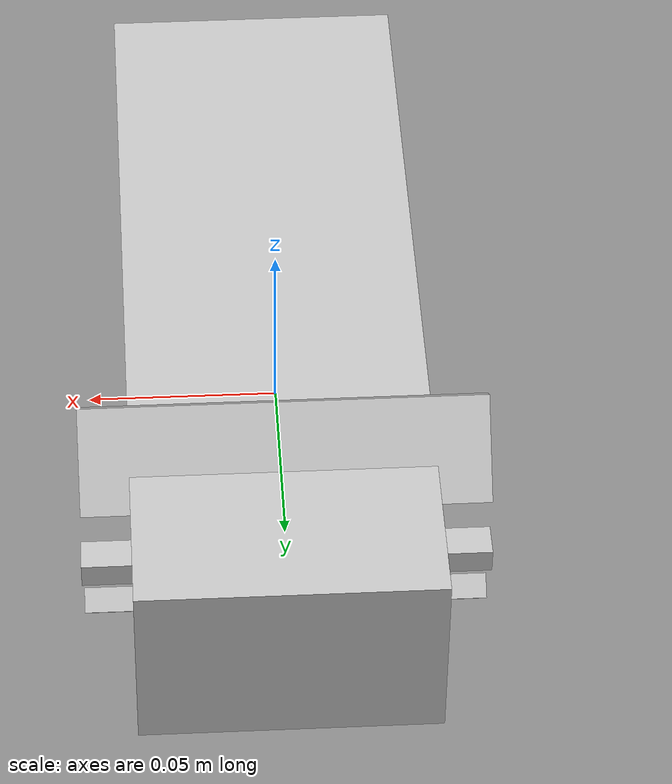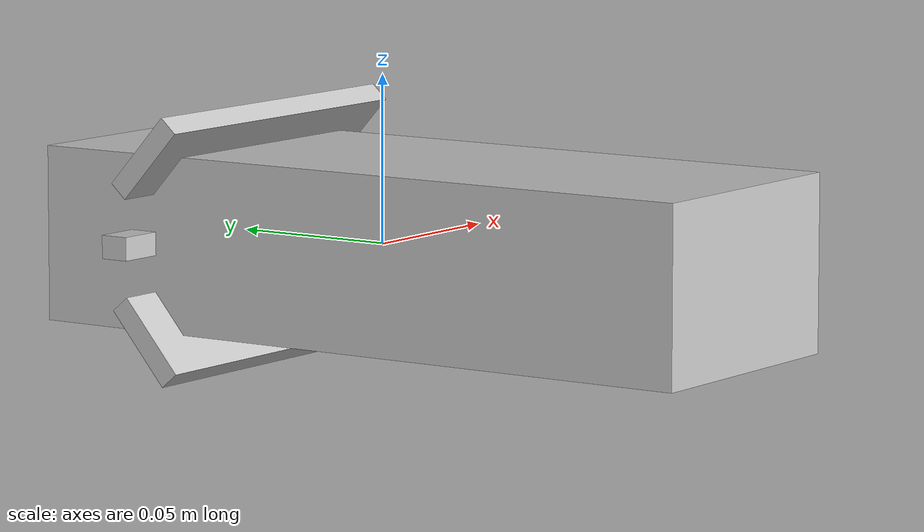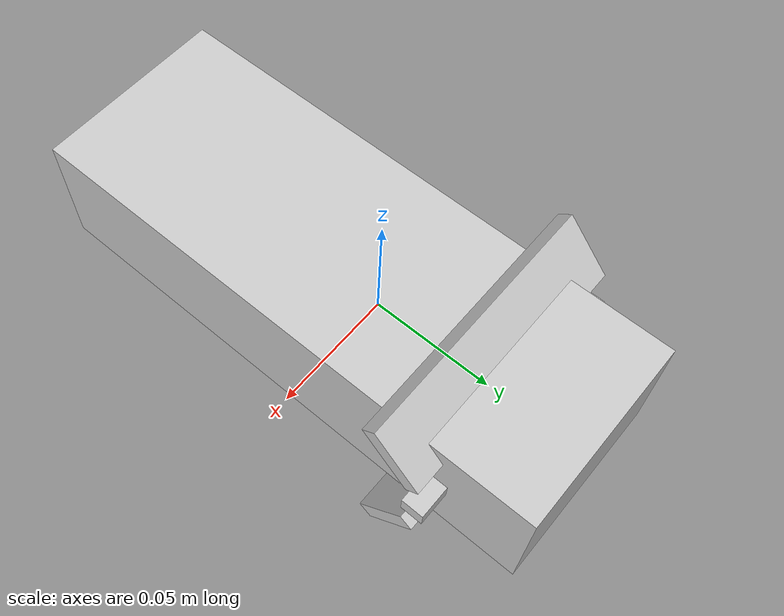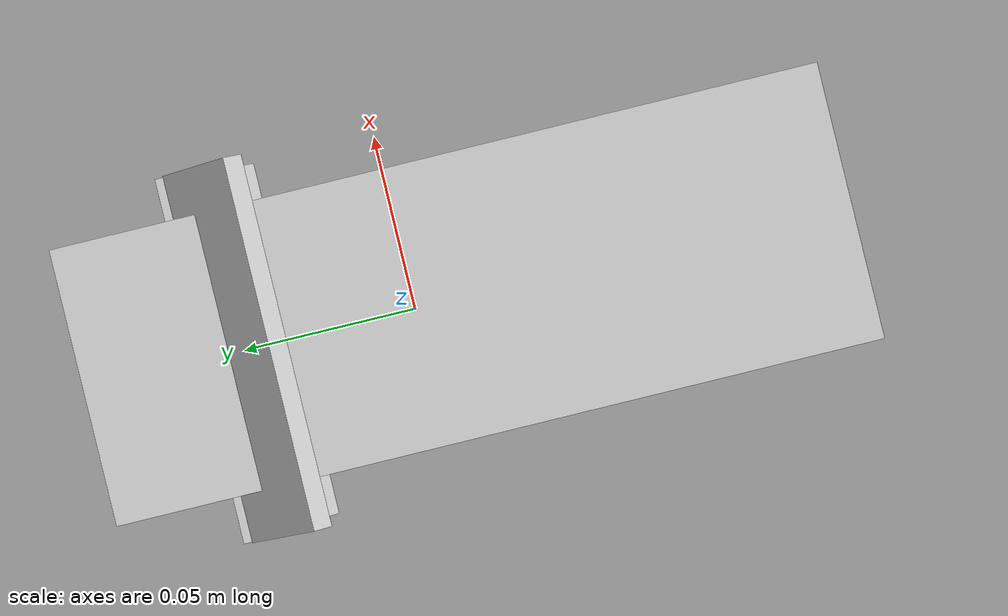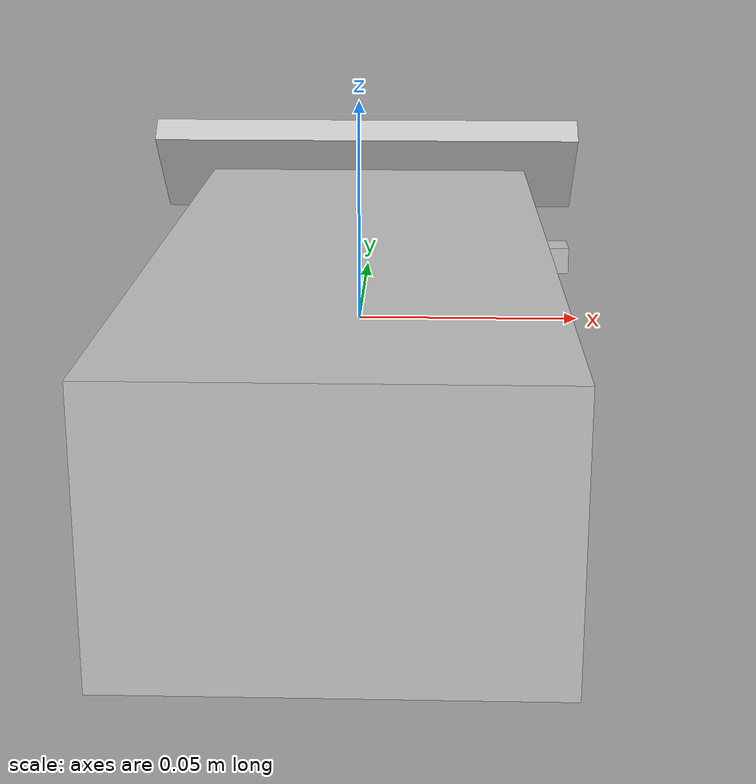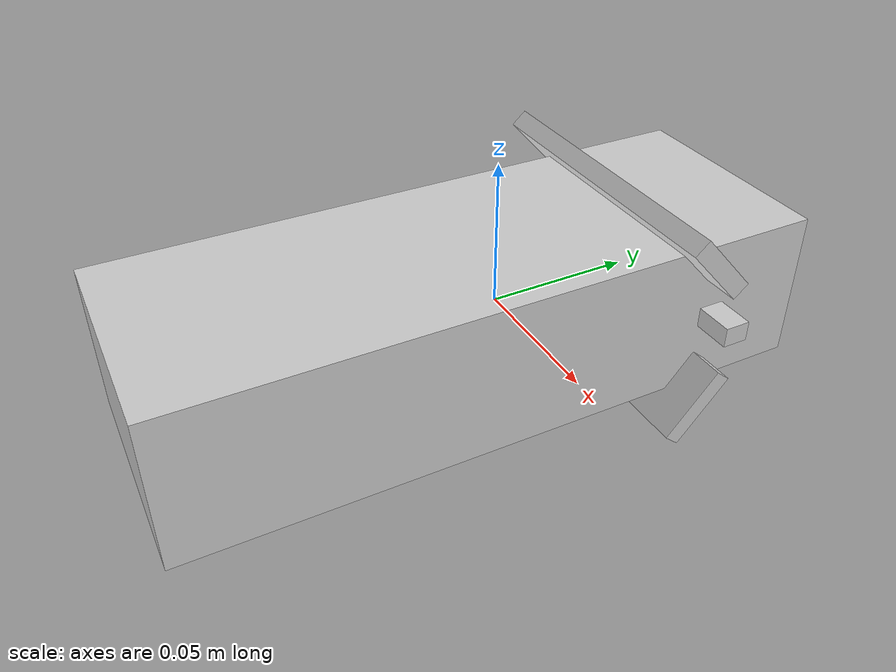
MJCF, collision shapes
<?xml version='1.0' encoding='utf-8'?>
<mujoco model="bigger_milk">
  <asset>
  <texture file="texture_map.png" name="tex-textured" type="2d" />
  <material name="bigger_milk" reflectance="0.5" texrepeat="1 1" texture="tex-textured" texuniform="false" />
  <mesh file="visual/textured_vis.msh" name="textured_vis" scale="0.01125 0.00750 0.01500" /></asset>
  <worldbody>
    <body>
      <body name="object">
      <geom solimp="0.998 0.998 0.001" solref="0.001 1" density="100" friction="0.95 0.3 0.1" type="mesh" mesh="textured_vis" conaffinity="0" contype="0" group="1" material="bigger_milk" /><geom solimp="0.998 0.998 0.001" solref="0.001 1" density="100" friction="0.95 0.3 0.1" type="box" pos="0.00055 -0.01500 0.00000" quat="0.70711 0.70711 0.00000 -0.00000" size="0.03938 0.02625 0.10950" group="0" rgba="0.8 0.8 0.8 0.3" /><geom solimp="0.998 0.998 0.001" solref="0.001 1" density="100" friction="0.95 0.3 0.1" type="box" pos="0.00008 0.04784 0.02704" quat="0.28687 0.64630 -0.28687 -0.64630" size="0.00327 0.01381 0.05262" group="0" rgba="0.8 0.8 0.8 0.3" /><geom solimp="0.998 0.998 0.001" solref="0.001 1" density="100" friction="0.95 0.3 0.1" type="box" pos="0.00008 0.04784 -0.02688" quat="0.64203 0.29630 0.64203 0.29630" size="0.00327 0.01381 0.05262" group="0" rgba="0.8 0.8 0.8 0.3" /><geom solimp="0.998 0.998 0.001" solref="0.001 1" density="100" friction="0.95 0.3 0.1" type="box" pos="0.00008 0.05849 0.00010" quat="0.50000 0.50000 -0.50000 -0.50000" size="0.00443 0.00348 0.05300" group="0" rgba="0.8 0.8 0.8 0.3" /></body>
      <site rgba="0 0 0 0" size="0.00750" pos="0.00000 0.00000 -0.12000" name="bottom_site" />
      <site rgba="0 0 0 0" size="0.00750" pos="0.00000 0.00000 0.08000" name="top_site" />
      <site rgba="0 0 0 0" size="0.00750" pos="0.04500 0.03000 0.00000" name="horizontal_radius_site" />
    </body>
  </worldbody>
</mujoco>
